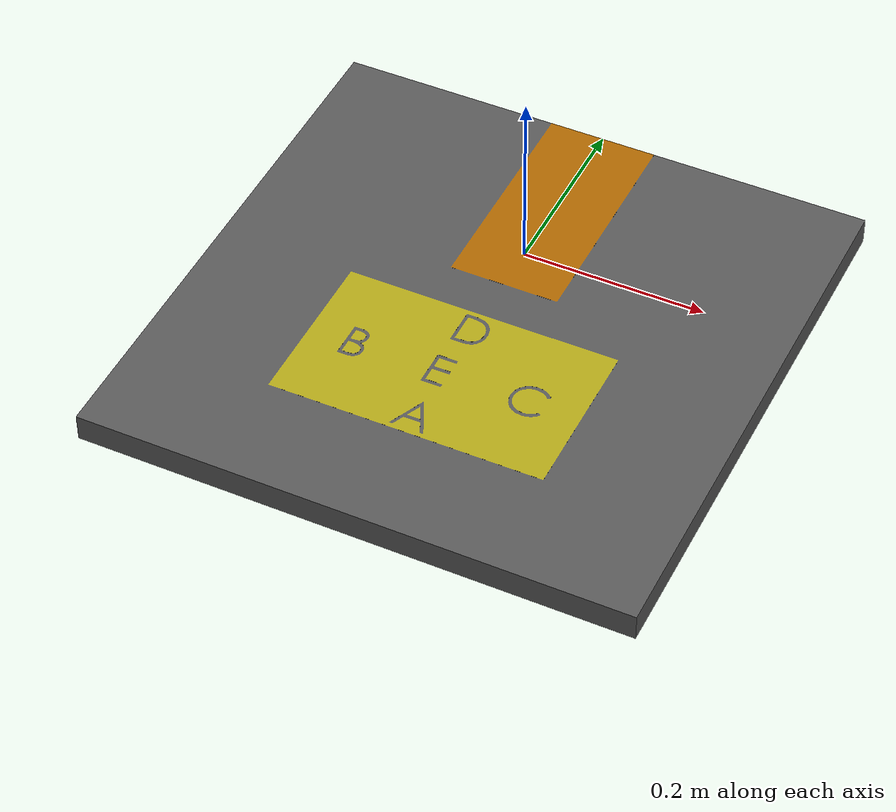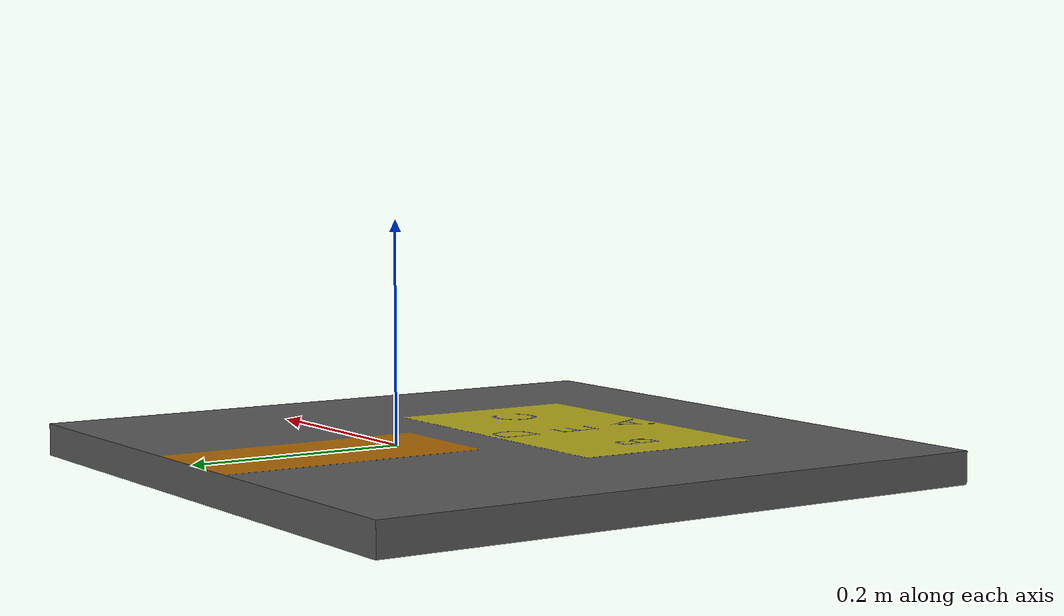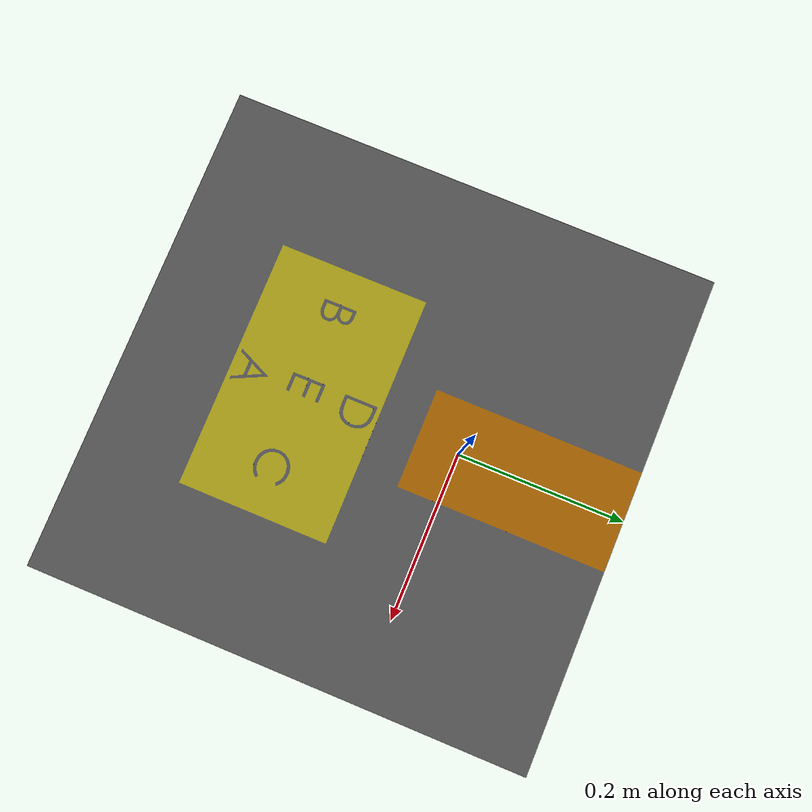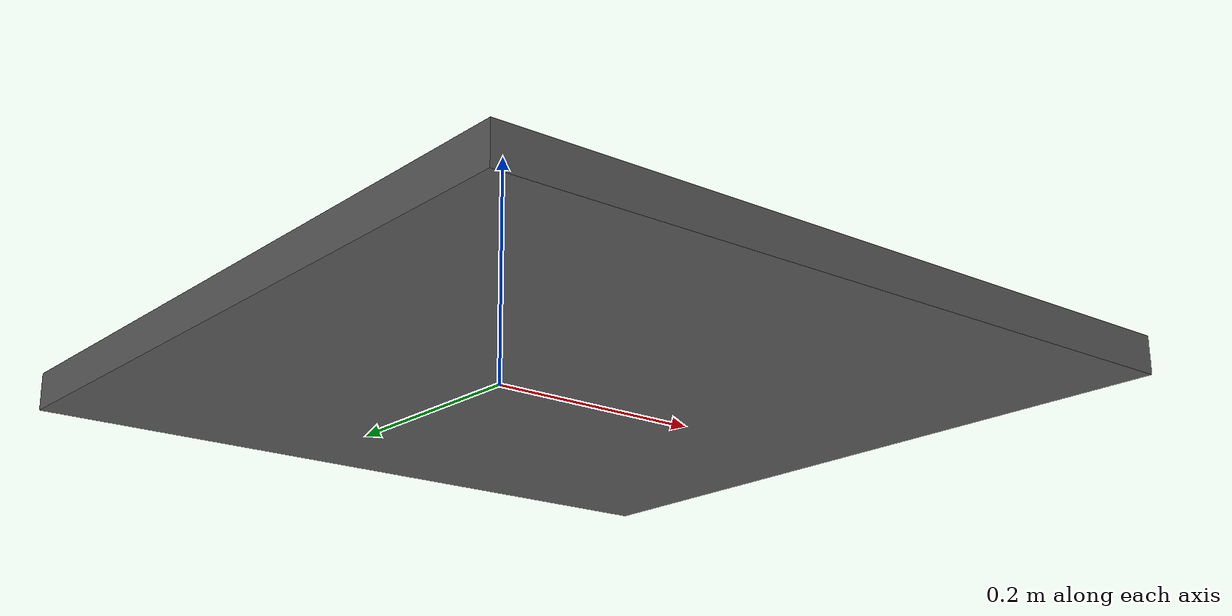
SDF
<?xml version='1.0'?>
<sdf version='1.7'>
  <model name='sorting_table'>
    <pose>0 0 0 0 0 0</pose>
    <link name='table'>
      <collision name='table_collision'>
        <pose>0 -0.1 -0.015 0 0 0</pose>
        <geometry>
          <box>
            <size>0.6 0.6 0.03</size>
          </box>
        </geometry>
      </collision>
      <visual name='table_visual'>
        <pose>0 0 0 0 0 0</pose>
        <geometry>
          <mesh>
            <uri>model://sorting_table/meshes/table.dae</uri>
          </mesh>
        </geometry>
      </visual>
    </link>
    <static>1</static>
  </model>
</sdf>
